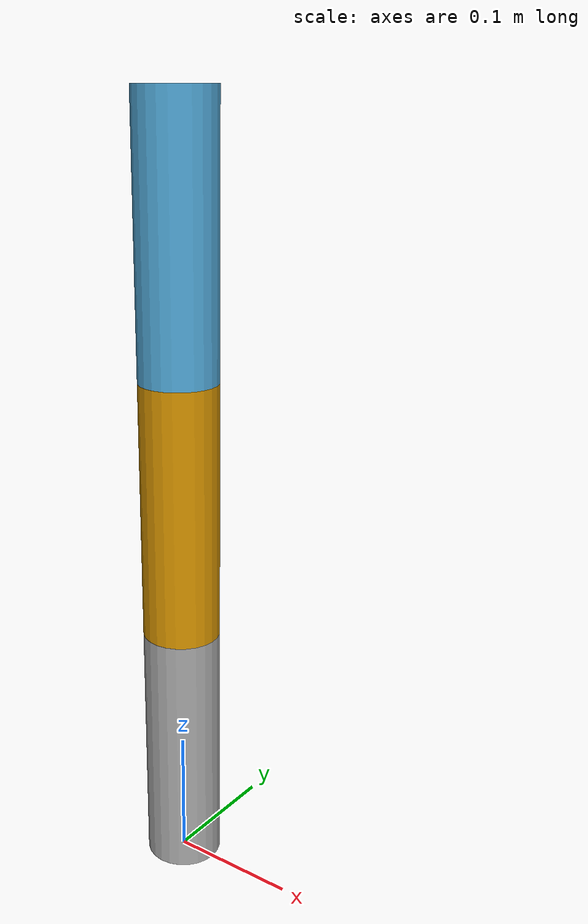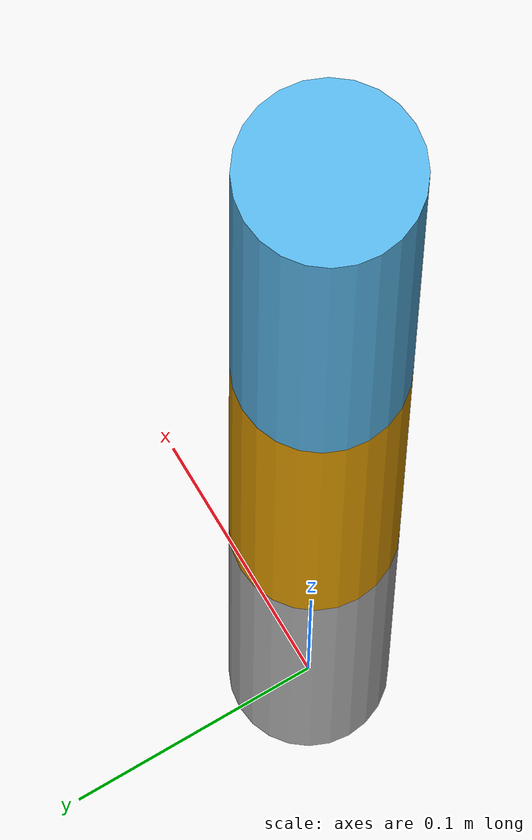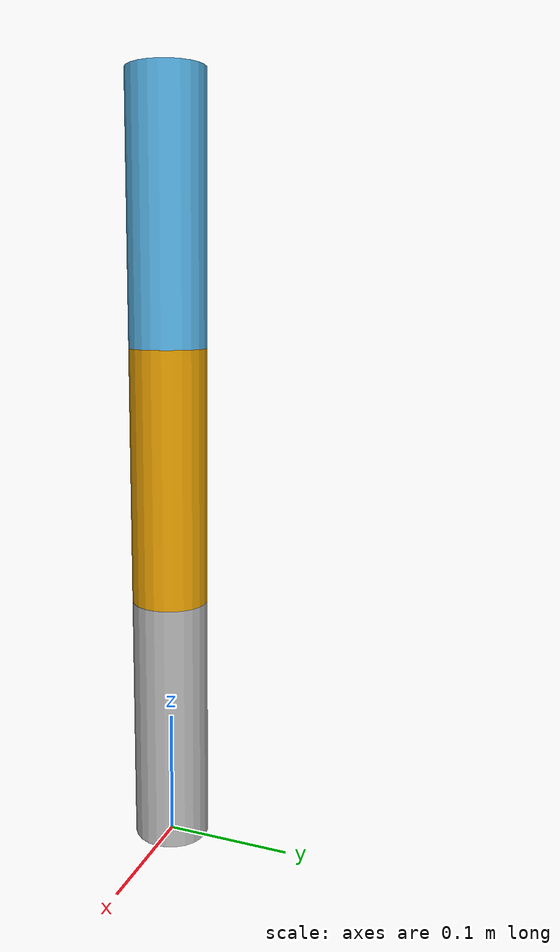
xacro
<?xml version="1.0"?>
<robot xmlns:xacro="http://www.ros.org/wiki/xacro" name="ak60_robot">

  <link name="base_link"/>

  <link name="imu_link"/>

  <joint name="imu_joint" type="fixed">
    <parent link="base_link"/>
    <child link="imu_link"/>
    <origin xyz="0 0 0" rpy="0 0 0"/>
  </joint>

  <link name="camera_link">
  </link>

  <joint name="camera_joint" type="fixed">
    <parent link="base_link"/>
    <child link="camera_link"/>
    <origin xyz="0.25 0.0 0.35" rpy="0 0 0"/>
  </joint>

  <link name="steer_1"/> <link name="steer_2"/> <link name="steer_3"/>
  <link name="steer_4"/> <link name="steer_5"/> <link name="steer_6"/>

  <link name="wheel_1"/> <link name="wheel_2"/> <link name="wheel_3"/>
  <link name="wheel_4"/> <link name="wheel_5"/> <link name="wheel_6"/>

  <link name="arm_1">
    <visual>
      <origin xyz="0 0 0.1" rpy="0 0 0"/>
      <geometry>
        <cylinder radius="0.03" length="0.2"/>
      </geometry>
    </visual>
    <collision>
      <origin xyz="0 0 0.1" rpy="0 0 0"/>
      <geometry>
        <cylinder radius="0.03" length="0.2"/>
      </geometry>
    </collision>
  </link>

  <link name="arm_2">
    <visual>
      <origin xyz="0 0 0.3" rpy="0 0 0"/>
      <geometry>
        <cylinder radius="0.03" length="0.2"/>
      </geometry>
    </visual>
    <collision>
      <origin xyz="0 0 0.3" rpy="0 0 0"/>
      <geometry>
        <cylinder radius="0.03" length="0.2"/>
      </geometry>
    </collision>
  </link>

  <link name="arm_3">
    <visual>
      <origin xyz="0 0 0.5" rpy="0 0 0"/>
      <geometry>
        <cylinder radius="0.03" length="0.2"/>
      </geometry>
    </visual>
    <collision>
      <origin xyz="0 0 0.5" rpy="0 0 0"/>
      <geometry>
        <cylinder radius="0.03" length="0.2"/>
      </geometry>
    </collision>
  </link>

  <link name="gripper_link"/>

  <joint name="wheel_steer_1" type="revolute"><parent link="base_link"/><child link="steer_1"/><limit lower="-1.5708" upper="1.5708" effort="10" velocity="3.14"/></joint>
  <joint name="wheel_steer_2" type="revolute"><parent link="base_link"/><child link="steer_2"/><limit lower="-1.5708" upper="1.5708" effort="10" velocity="3.14"/></joint>
  <joint name="wheel_steer_3" type="revolute"><parent link="base_link"/><child link="steer_3"/><limit lower="-1.5708" upper="1.5708" effort="10" velocity="3.14"/></joint>
  <joint name="wheel_steer_4" type="revolute"><parent link="base_link"/><child link="steer_4"/><limit lower="-1.5708" upper="1.5708" effort="10" velocity="3.14"/></joint>
  <joint name="wheel_steer_5" type="revolute"><parent link="base_link"/><child link="steer_5"/><limit lower="-1.5708" upper="1.5708" effort="10" velocity="3.14"/></joint>
  <joint name="wheel_steer_6" type="revolute"><parent link="base_link"/><child link="steer_6"/><limit lower="-1.5708" upper="1.5708" effort="10" velocity="3.14"/></joint>

  <joint name="wheel_joint_1" type="continuous"><parent link="steer_1"/><child link="wheel_1"/></joint>
  <joint name="wheel_joint_2" type="continuous"><parent link="steer_2"/><child link="wheel_2"/></joint>
  <joint name="wheel_joint_3" type="continuous"><parent link="steer_3"/><child link="wheel_3"/></joint>
  <joint name="wheel_joint_4" type="continuous"><parent link="steer_4"/><child link="wheel_4"/></joint>
  <joint name="wheel_joint_5" type="continuous"><parent link="steer_5"/><child link="wheel_5"/></joint>
  <joint name="wheel_joint_6" type="continuous"><parent link="steer_6"/><child link="wheel_6"/></joint>

  <joint name="arm_joint_1" type="revolute"><parent link="base_link"/><child link="arm_1"/><limit lower="0.0" upper="8.0" effort="10" velocity="3.14"/></joint>
  <joint name="arm_joint_2" type="revolute"><parent link="arm_1"/><child link="arm_2"/><limit lower="0.0" upper="1.5708" effort="10" velocity="3.14"/></joint>
  <joint name="arm_joint_3" type="revolute"><parent link="arm_2"/><child link="arm_3"/><limit lower="-1.5708" upper="1.5708" effort="10" velocity="3.14"/></joint>
  <joint name="gripper_joint" type="revolute">
    <parent link="arm_3"/>
    <child link="gripper_link"/>
    <limit lower="0.0" upper="1.5708" effort="10" velocity="3.14"/>
  </joint>

  <ros2_control name="AK60RobotSystem" type="system">
    <hardware>
      <plugin>robot_hw_interface/Ak60RobotHwInterface</plugin>
    </hardware>

    <joint name="wheel_joint_1">
      <command_interface name="velocity"/>
      <state_interface name="position"/>
      <state_interface name="velocity"/>
      <state_interface name="effort"/>
    </joint>
    <joint name="wheel_joint_2">
      <command_interface name="velocity"/>
      <state_interface name="position"/>
      <state_interface name="velocity"/>
      <state_interface name="effort"/>
    </joint>
    <joint name="wheel_joint_3">
      <command_interface name="velocity"/>
      <state_interface name="position"/>
      <state_interface name="velocity"/>
      <state_interface name="effort"/>
    </joint>
    <joint name="wheel_joint_4">
      <command_interface name="velocity"/>
      <state_interface name="position"/>
      <state_interface name="velocity"/>
      <state_interface name="effort"/>
    </joint>
    <joint name="wheel_joint_5">
      <command_interface name="velocity"/>
      <state_interface name="position"/>
      <state_interface name="velocity"/>
      <state_interface name="effort"/>
    </joint>
    <joint name="wheel_joint_6">
      <command_interface name="velocity"/>
      <state_interface name="position"/>
      <state_interface name="velocity"/>
      <state_interface name="effort"/>
    </joint>

    <joint name="wheel_steer_1">
      <command_interface name="position"/>
      <state_interface name="position"/>
    </joint>
    <joint name="wheel_steer_2">
      <command_interface name="position"/>
      <state_interface name="position"/>
    </joint>
    <joint name="wheel_steer_3">
      <command_interface name="position"/>
      <state_interface name="position"/>
    </joint>
    <joint name="wheel_steer_4">
      <command_interface name="position"/>
      <state_interface name="position"/>
    </joint>
    <joint name="wheel_steer_5">
      <command_interface name="position"/>
      <state_interface name="position"/>
    </joint>
    <joint name="wheel_steer_6">
      <command_interface name="position"/>
      <state_interface name="position"/>
    </joint>

    <joint name="arm_joint_1">
      <command_interface name="position"/>
      <state_interface name="position"/>
    </joint>
    <joint name="arm_joint_2">
      <command_interface name="position"/>
      <state_interface name="position"/>
    </joint>
    <joint name="arm_joint_3">
      <command_interface name="position"/>
      <state_interface name="position"/>
    </joint>
    <joint name="gripper_joint">
      <command_interface name="position"/>
      <state_interface name="position"/>
      <state_interface name="effort"/>
      <state_interface name="velocity"/>
    </joint>

  </ros2_control>
</robot>
